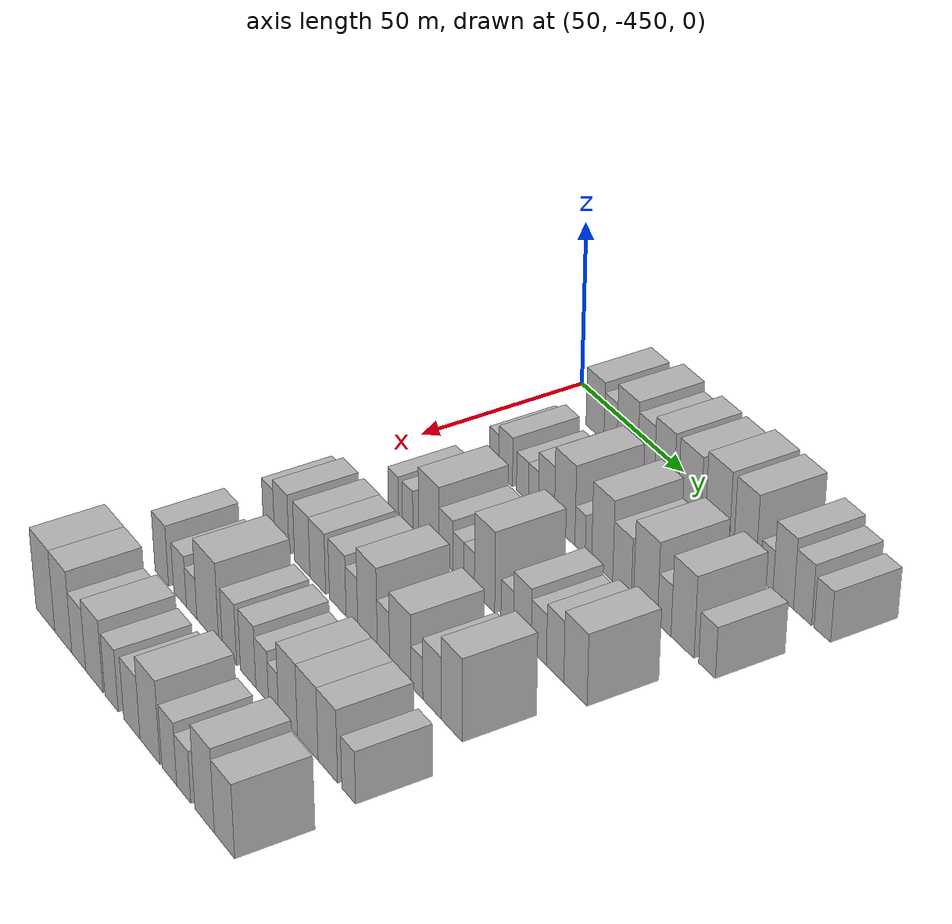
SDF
<sdf version="1.6">
 <world name="default">
  <model name="building_12">
   <static>1</static>
   <pose>50.0000 -427.6736 0 0.000000 0.000000 0.000000</pose>
   <link name="link">
    <pose>0 0 9.00 0 0 0</pose>
    <collision name="collision"><geometry><box><size>20.0000 8.9365 18.0000</size></box></geometry></collision>
    <visual name="visual">
     <cast_shadows>0</cast_shadows>
     <geometry><box><size>20.0000 8.9365 18.0000</size></box></geometry>
     <material>
      <script>
       <uri>model://HANNAS_wall/materials/scripts</uri>
       <uri>model://HANNAS_wall/materials/textures</uri>
       <name>vrc/HANNAS_wall</name>
      </script>
     </material>
    </visual>
   </link>
  </model>
  <model name="building_13">
   <static>1</static>
   <pose>50.0000 -420.0522 0 0.000000 0.000000 0.000000</pose>
   <link name="link">
    <pose>0 0 7.50 0 0 0</pose>
    <collision name="collision"><geometry><box><size>20.0000 6.3062 15.0000</size></box></geometry></collision>
    <visual name="visual">
     <cast_shadows>0</cast_shadows>
     <geometry><box><size>20.0000 6.3062 15.0000</size></box></geometry>
     <material>
      <script>
       <uri>model://HANNAS_wall/materials/scripts</uri>
       <uri>model://HANNAS_wall/materials/textures</uri>
       <name>vrc/HANNAS_wall</name>
      </script>
     </material>
    </visual>
   </link>
  </model>
  <model name="building_14">
   <static>1</static>
   <pose>50.0000 -411.8444 0 0.000000 0.000000 0.000000</pose>
   <link name="link">
    <pose>0 0 10.50 0 0 0</pose>
    <collision name="collision"><geometry><box><size>20.0000 10.1093 21.0000</size></box></geometry></collision>
    <visual name="visual">
     <cast_shadows>0</cast_shadows>
     <geometry><box><size>20.0000 10.1093 21.0000</size></box></geometry>
     <material>
      <script>
       <uri>model://HANNAS_wall/materials/scripts</uri>
       <uri>model://HANNAS_wall/materials/textures</uri>
       <name>vrc/HANNAS_wall</name>
      </script>
     </material>
    </visual>
   </link>
  </model>
  <model name="building_15">
   <static>1</static>
   <pose>50.0000 -402.8027 0 0.000000 0.000000 0.000000</pose>
   <link name="link">
    <pose>0 0 9.00 0 0 0</pose>
    <collision name="collision"><geometry><box><size>20.0000 7.9742 18.0000</size></box></geometry></collision>
    <visual name="visual">
     <cast_shadows>0</cast_shadows>
     <geometry><box><size>20.0000 7.9742 18.0000</size></box></geometry>
     <material>
      <script>
       <uri>model://HANNAS_wall/materials/scripts</uri>
       <uri>model://HANNAS_wall/materials/textures</uri>
       <name>vrc/HANNAS_wall</name>
      </script>
     </material>
    </visual>
   </link>
  </model>
  <model name="building_16">
   <static>1</static>
   <pose>50.0000 -394.1698 0 0.000000 0.000000 0.000000</pose>
   <link name="link">
    <pose>0 0 10.50 0 0 0</pose>
    <collision name="collision"><geometry><box><size>20.0000 9.2916 21.0000</size></box></geometry></collision>
    <visual name="visual">
     <cast_shadows>0</cast_shadows>
     <geometry><box><size>20.0000 9.2916 21.0000</size></box></geometry>
     <material>
      <script>
       <uri>model://HANNAS_wall/materials/scripts</uri>
       <uri>model://HANNAS_wall/materials/textures</uri>
       <name>vrc/HANNAS_wall</name>
      </script>
     </material>
    </visual>
   </link>
  </model>
  <model name="building_17">
   <static>1</static>
   <pose>50.0000 -382.2855 0 0.000000 0.000000 0.000000</pose>
   <link name="link">
    <pose>0 0 10.50 0 0 0</pose>
    <collision name="collision"><geometry><box><size>20.0000 10.4769 21.0000</size></box></geometry></collision>
    <visual name="visual">
     <cast_shadows>0</cast_shadows>
     <geometry><box><size>20.0000 10.4769 21.0000</size></box></geometry>
     <material>
      <script>
       <uri>model://HANNAS_wall/materials/scripts</uri>
       <uri>model://HANNAS_wall/materials/textures</uri>
       <name>vrc/HANNAS_wall</name>
      </script>
     </material>
    </visual>
   </link>
  </model>
  <model name="building_18">
   <static>1</static>
   <pose>50.0000 -369.6378 0 0.000000 0.000000 0.000000</pose>
   <link name="link">
    <pose>0 0 12.00 0 0 0</pose>
    <collision name="collision"><geometry><box><size>20.0000 10.8184 24.0000</size></box></geometry></collision>
    <visual name="visual">
     <cast_shadows>0</cast_shadows>
     <geometry><box><size>20.0000 10.8184 24.0000</size></box></geometry>
     <material>
      <script>
       <uri>model://HANNAS_wall/materials/scripts</uri>
       <uri>model://HANNAS_wall/materials/textures</uri>
       <name>vrc/HANNAS_wall</name>
      </script>
     </material>
    </visual>
   </link>
  </model>
  <model name="building_19">
   <static>1</static>
   <pose>50.0000 -357.3450 0 0.000000 0.000000 0.000000</pose>
   <link name="link">
    <pose>0 0 12.00 0 0 0</pose>
    <collision name="collision"><geometry><box><size>20.0000 9.7672 24.0000</size></box></geometry></collision>
    <visual name="visual">
     <cast_shadows>0</cast_shadows>
     <geometry><box><size>20.0000 9.7672 24.0000</size></box></geometry>
     <material>
      <script>
       <uri>model://HANNAS_wall/materials/scripts</uri>
       <uri>model://HANNAS_wall/materials/textures</uri>
       <name>vrc/HANNAS_wall</name>
      </script>
     </material>
    </visual>
   </link>
  </model>
  <model name="building_20">
   <static>1</static>
   <pose>50.0000 -347.6540 0 0.000000 0.000000 0.000000</pose>
   <link name="link">
    <pose>0 0 6.00 0 0 0</pose>
    <collision name="collision"><geometry><box><size>20.0000 5.6147 12.0000</size></box></geometry></collision>
    <visual name="visual">
     <cast_shadows>0</cast_shadows>
     <geometry><box><size>20.0000 5.6147 12.0000</size></box></geometry>
     <material>
      <script>
       <uri>model://HANNAS_wall/materials/scripts</uri>
       <uri>model://HANNAS_wall/materials/textures</uri>
       <name>vrc/HANNAS_wall</name>
      </script>
     </material>
    </visual>
   </link>
  </model>
  <model name="building_21">
   <static>1</static>
   <pose>50.0000 -340.4509 0 0.000000 0.000000 0.000000</pose>
   <link name="link">
    <pose>0 0 10.50 0 0 0</pose>
    <collision name="collision"><geometry><box><size>20.0000 8.7916 21.0000</size></box></geometry></collision>
    <visual name="visual">
     <cast_shadows>0</cast_shadows>
     <geometry><box><size>20.0000 8.7916 21.0000</size></box></geometry>
     <material>
      <script>
       <uri>model://HANNAS_wall/materials/scripts</uri>
       <uri>model://HANNAS_wall/materials/textures</uri>
       <name>vrc/HANNAS_wall</name>
      </script>
     </material>
    </visual>
   </link>
  </model>
  <model name="building_22">
   <static>1</static>
   <pose>50.0000 -332.2096 0 0.000000 0.000000 0.000000</pose>
   <link name="link">
    <pose>0 0 9.00 0 0 0</pose>
    <collision name="collision"><geometry><box><size>20.0000 7.6908 18.0000</size></box></geometry></collision>
    <visual name="visual">
     <cast_shadows>0</cast_shadows>
     <geometry><box><size>20.0000 7.6908 18.0000</size></box></geometry>
     <material>
      <script>
       <uri>model://HANNAS_wall/materials/scripts</uri>
       <uri>model://HANNAS_wall/materials/textures</uri>
       <name>vrc/HANNAS_wall</name>
      </script>
     </material>
    </visual>
   </link>
  </model>
  <model name="building_23">
   <static>1</static>
   <pose>50.0000 -323.9101 0 0.000000 0.000000 0.000000</pose>
   <link name="link">
    <pose>0 0 7.50 0 0 0</pose>
    <collision name="collision"><geometry><box><size>20.0000 6.9083 15.0000</size></box></geometry></collision>
    <visual name="visual">
     <cast_shadows>0</cast_shadows>
     <geometry><box><size>20.0000 6.9083 15.0000</size></box></geometry>
     <material>
      <script>
       <uri>model://HANNAS_wall/materials/scripts</uri>
       <uri>model://HANNAS_wall/materials/textures</uri>
       <name>vrc/HANNAS_wall</name>
      </script>
     </material>
    </visual>
   </link>
  </model>
  <model name="building_130">
   <static>1</static>
   <pose>82.0000 -425.8612 0 0.000000 0.000000 0.000000</pose>
   <link name="link">
    <pose>0 0 6.00 0 0 0</pose>
    <collision name="collision"><geometry><box><size>20.0000 4.9716 12.0000</size></box></geometry></collision>
    <visual name="visual">
     <cast_shadows>0</cast_shadows>
     <geometry><box><size>20.0000 4.9716 12.0000</size></box></geometry>
     <material>
      <script>
       <uri>model://HANNAS_wall/materials/scripts</uri>
       <uri>model://HANNAS_wall/materials/textures</uri>
       <name>vrc/HANNAS_wall</name>
      </script>
     </material>
    </visual>
   </link>
  </model>
  <model name="building_131">
   <static>1</static>
   <pose>82.0000 -419.9630 0 0.000000 0.000000 0.000000</pose>
   <link name="link">
    <pose>0 0 7.50 0 0 0</pose>
    <collision name="collision"><geometry><box><size>20.0000 6.8249 15.0000</size></box></geometry></collision>
    <visual name="visual">
     <cast_shadows>0</cast_shadows>
     <geometry><box><size>20.0000 6.8249 15.0000</size></box></geometry>
     <material>
      <script>
       <uri>model://HANNAS_wall/materials/scripts</uri>
       <uri>model://HANNAS_wall/materials/textures</uri>
       <name>vrc/HANNAS_wall</name>
      </script>
     </material>
    </visual>
   </link>
  </model>
  <model name="building_132">
   <static>1</static>
   <pose>82.0000 -411.5693 0 0.000000 0.000000 0.000000</pose>
   <link name="link">
    <pose>0 0 6.00 0 0 0</pose>
    <collision name="collision"><geometry><box><size>20.0000 5.9625 12.0000</size></box></geometry></collision>
    <visual name="visual">
     <cast_shadows>0</cast_shadows>
     <geometry><box><size>20.0000 5.9625 12.0000</size></box></geometry>
     <material>
      <script>
       <uri>model://HANNAS_wall/materials/scripts</uri>
       <uri>model://HANNAS_wall/materials/textures</uri>
       <name>vrc/HANNAS_wall</name>
      </script>
     </material>
    </visual>
   </link>
  </model>
  <model name="building_133">
   <static>1</static>
   <pose>82.0000 -406.1135 0 0.000000 0.000000 0.000000</pose>
   <link name="link">
    <pose>0 0 6.00 0 0 0</pose>
    <collision name="collision"><geometry><box><size>20.0000 4.9490 12.0000</size></box></geometry></collision>
    <visual name="visual">
     <cast_shadows>0</cast_shadows>
     <geometry><box><size>20.0000 4.9490 12.0000</size></box></geometry>
     <material>
      <script>
       <uri>model://HANNAS_wall/materials/scripts</uri>
       <uri>model://HANNAS_wall/materials/textures</uri>
       <name>vrc/HANNAS_wall</name>
      </script>
     </material>
    </visual>
   </link>
  </model>
  <model name="building_134">
   <static>1</static>
   <pose>82.0000 -399.7277 0 0.000000 0.000000 0.000000</pose>
   <link name="link">
    <pose>0 0 9.00 0 0 0</pose>
    <collision name="collision"><geometry><box><size>20.0000 7.8226 18.0000</size></box></geometry></collision>
    <visual name="visual">
     <cast_shadows>0</cast_shadows>
     <geometry><box><size>20.0000 7.8226 18.0000</size></box></geometry>
     <material>
      <script>
       <uri>model://HANNAS_wall/materials/scripts</uri>
       <uri>model://HANNAS_wall/materials/textures</uri>
       <name>vrc/HANNAS_wall</name>
      </script>
     </material>
    </visual>
   </link>
  </model>
  <model name="building_135">
   <static>1</static>
   <pose>82.0000 -390.8663 0 0.000000 0.000000 0.000000</pose>
   <link name="link">
    <pose>0 0 12.00 0 0 0</pose>
    <collision name="collision"><geometry><box><size>20.0000 9.9002 24.0000</size></box></geometry></collision>
    <visual name="visual">
     <cast_shadows>0</cast_shadows>
     <geometry><box><size>20.0000 9.9002 24.0000</size></box></geometry>
     <material>
      <script>
       <uri>model://HANNAS_wall/materials/scripts</uri>
       <uri>model://HANNAS_wall/materials/textures</uri>
       <name>vrc/HANNAS_wall</name>
      </script>
     </material>
    </visual>
   </link>
  </model>
  <model name="building_136">
   <static>1</static>
   <pose>82.0000 -383.4453 0 0.000000 0.000000 0.000000</pose>
   <link name="link">
    <pose>0 0 6.00 0 0 0</pose>
    <collision name="collision"><geometry><box><size>20.0000 4.9418 12.0000</size></box></geometry></collision>
    <visual name="visual">
     <cast_shadows>0</cast_shadows>
     <geometry><box><size>20.0000 4.9418 12.0000</size></box></geometry>
     <material>
      <script>
       <uri>model://HANNAS_wall/materials/scripts</uri>
       <uri>model://HANNAS_wall/materials/textures</uri>
       <name>vrc/HANNAS_wall</name>
      </script>
     </material>
    </visual>
   </link>
  </model>
  <model name="building_137">
   <static>1</static>
   <pose>82.0000 -373.0420 0 0.000000 0.000000 0.000000</pose>
   <link name="link">
    <pose>0 0 12.00 0 0 0</pose>
    <collision name="collision"><geometry><box><size>20.0000 9.8647 24.0000</size></box></geometry></collision>
    <visual name="visual">
     <cast_shadows>0</cast_shadows>
     <geometry><box><size>20.0000 9.8647 24.0000</size></box></geometry>
     <material>
      <script>
       <uri>model://HANNAS_wall/materials/scripts</uri>
       <uri>model://HANNAS_wall/materials/textures</uri>
       <name>vrc/HANNAS_wall</name>
      </script>
     </material>
    </visual>
   </link>
  </model>
  <model name="building_138">
   <static>1</static>
   <pose>82.0000 -363.8244 0 0.000000 0.000000 0.000000</pose>
   <link name="link">
    <pose>0 0 9.00 0 0 0</pose>
    <collision name="collision"><geometry><box><size>20.0000 8.5706 18.0000</size></box></geometry></collision>
    <visual name="visual">
     <cast_shadows>0</cast_shadows>
     <geometry><box><size>20.0000 8.5706 18.0000</size></box></geometry>
     <material>
      <script>
       <uri>model://HANNAS_wall/materials/scripts</uri>
       <uri>model://HANNAS_wall/materials/textures</uri>
       <name>vrc/HANNAS_wall</name>
      </script>
     </material>
    </visual>
   </link>
  </model>
  <model name="building_139">
   <static>1</static>
   <pose>82.0000 -353.1329 0 0.000000 0.000000 0.000000</pose>
   <link name="link">
    <pose>0 0 12.00 0 0 0</pose>
    <collision name="collision"><geometry><box><size>20.0000 10.8123 24.0000</size></box></geometry></collision>
    <visual name="visual">
     <cast_shadows>0</cast_shadows>
     <geometry><box><size>20.0000 10.8123 24.0000</size></box></geometry>
     <material>
      <script>
       <uri>model://HANNAS_wall/materials/scripts</uri>
       <uri>model://HANNAS_wall/materials/textures</uri>
       <name>vrc/HANNAS_wall</name>
      </script>
     </material>
    </visual>
   </link>
  </model>
  <model name="building_140">
   <static>1</static>
   <pose>82.0000 -344.7170 0 0.000000 0.000000 0.000000</pose>
   <link name="link">
    <pose>0 0 7.50 0 0 0</pose>
    <collision name="collision"><geometry><box><size>20.0000 6.0196 15.0000</size></box></geometry></collision>
    <visual name="visual">
     <cast_shadows>0</cast_shadows>
     <geometry><box><size>20.0000 6.0196 15.0000</size></box></geometry>
     <material>
      <script>
       <uri>model://HANNAS_wall/materials/scripts</uri>
       <uri>model://HANNAS_wall/materials/textures</uri>
       <name>vrc/HANNAS_wall</name>
      </script>
     </material>
    </visual>
   </link>
  </model>
  <model name="building_141">
   <static>1</static>
   <pose>82.0000 -336.6566 0 0.000000 0.000000 0.000000</pose>
   <link name="link">
    <pose>0 0 12.00 0 0 0</pose>
    <collision name="collision"><geometry><box><size>20.0000 10.1012 24.0000</size></box></geometry></collision>
    <visual name="visual">
     <cast_shadows>0</cast_shadows>
     <geometry><box><size>20.0000 10.1012 24.0000</size></box></geometry>
     <material>
      <script>
       <uri>model://HANNAS_wall/materials/scripts</uri>
       <uri>model://HANNAS_wall/materials/textures</uri>
       <name>vrc/HANNAS_wall</name>
      </script>
     </material>
    </visual>
   </link>
  </model>
  <model name="building_142">
   <static>1</static>
   <pose>82.0000 -326.0130 0 0.000000 0.000000 0.000000</pose>
   <link name="link">
    <pose>0 0 7.50 0 0 0</pose>
    <collision name="collision"><geometry><box><size>20.0000 7.1860 15.0000</size></box></geometry></collision>
    <visual name="visual">
     <cast_shadows>0</cast_shadows>
     <geometry><box><size>20.0000 7.1860 15.0000</size></box></geometry>
     <material>
      <script>
       <uri>model://HANNAS_wall/materials/scripts</uri>
       <uri>model://HANNAS_wall/materials/textures</uri>
       <name>vrc/HANNAS_wall</name>
      </script>
     </material>
    </visual>
   </link>
  </model>
  <model name="building_253">
   <static>1</static>
   <pose>114.0000 -422.2380 0 0.000000 0.000000 0.000000</pose>
   <link name="link">
    <pose>0 0 6.00 0 0 0</pose>
    <collision name="collision"><geometry><box><size>20.0000 5.4685 12.0000</size></box></geometry></collision>
    <visual name="visual">
     <cast_shadows>0</cast_shadows>
     <geometry><box><size>20.0000 5.4685 12.0000</size></box></geometry>
     <material>
      <script>
       <uri>model://HANNAS_wall/materials/scripts</uri>
       <uri>model://HANNAS_wall/materials/textures</uri>
       <name>vrc/HANNAS_wall</name>
      </script>
     </material>
    </visual>
   </link>
  </model>
  <model name="building_254">
   <static>1</static>
   <pose>114.0000 -414.7691 0 0.000000 0.000000 0.000000</pose>
   <link name="link">
    <pose>0 0 6.00 0 0 0</pose>
    <collision name="collision"><geometry><box><size>20.0000 5.4694 12.0000</size></box></geometry></collision>
    <visual name="visual">
     <cast_shadows>0</cast_shadows>
     <geometry><box><size>20.0000 5.4694 12.0000</size></box></geometry>
     <material>
      <script>
       <uri>model://HANNAS_wall/materials/scripts</uri>
       <uri>model://HANNAS_wall/materials/textures</uri>
       <name>vrc/HANNAS_wall</name>
      </script>
     </material>
    </visual>
   </link>
  </model>
  <model name="building_255">
   <static>1</static>
   <pose>114.0000 -403.7948 0 0.000000 0.000000 0.000000</pose>
   <link name="link">
    <pose>0 0 10.50 0 0 0</pose>
    <collision name="collision"><geometry><box><size>20.0000 10.4792 21.0000</size></box></geometry></collision>
    <visual name="visual">
     <cast_shadows>0</cast_shadows>
     <geometry><box><size>20.0000 10.4792 21.0000</size></box></geometry>
     <material>
      <script>
       <uri>model://HANNAS_wall/materials/scripts</uri>
       <uri>model://HANNAS_wall/materials/textures</uri>
       <name>vrc/HANNAS_wall</name>
      </script>
     </material>
    </visual>
   </link>
  </model>
  <model name="building_256">
   <static>1</static>
   <pose>114.0000 -395.1674 0 0.000000 0.000000 0.000000</pose>
   <link name="link">
    <pose>0 0 7.50 0 0 0</pose>
    <collision name="collision"><geometry><box><size>20.0000 6.7755 15.0000</size></box></geometry></collision>
    <visual name="visual">
     <cast_shadows>0</cast_shadows>
     <geometry><box><size>20.0000 6.7755 15.0000</size></box></geometry>
     <material>
      <script>
       <uri>model://HANNAS_wall/materials/scripts</uri>
       <uri>model://HANNAS_wall/materials/textures</uri>
       <name>vrc/HANNAS_wall</name>
      </script>
     </material>
    </visual>
   </link>
  </model>
  <model name="building_257">
   <static>1</static>
   <pose>114.0000 -388.9438 0 0.000000 0.000000 0.000000</pose>
   <link name="link">
    <pose>0 0 6.00 0 0 0</pose>
    <collision name="collision"><geometry><box><size>20.0000 5.6717 12.0000</size></box></geometry></collision>
    <visual name="visual">
     <cast_shadows>0</cast_shadows>
     <geometry><box><size>20.0000 5.6717 12.0000</size></box></geometry>
     <material>
      <script>
       <uri>model://HANNAS_wall/materials/scripts</uri>
       <uri>model://HANNAS_wall/materials/textures</uri>
       <name>vrc/HANNAS_wall</name>
      </script>
     </material>
    </visual>
   </link>
  </model>
  <model name="building_258">
   <static>1</static>
   <pose>114.0000 -383.6056 0 0.000000 0.000000 0.000000</pose>
   <link name="link">
    <pose>0 0 6.00 0 0 0</pose>
    <collision name="collision"><geometry><box><size>20.0000 5.0047 12.0000</size></box></geometry></collision>
    <visual name="visual">
     <cast_shadows>0</cast_shadows>
     <geometry><box><size>20.0000 5.0047 12.0000</size></box></geometry>
     <material>
      <script>
       <uri>model://HANNAS_wall/materials/scripts</uri>
       <uri>model://HANNAS_wall/materials/textures</uri>
       <name>vrc/HANNAS_wall</name>
      </script>
     </material>
    </visual>
   </link>
  </model>
  <model name="building_259">
   <static>1</static>
   <pose>114.0000 -376.1774 0 0.000000 0.000000 0.000000</pose>
   <link name="link">
    <pose>0 0 12.00 0 0 0</pose>
    <collision name="collision"><geometry><box><size>20.0000 9.8517 24.0000</size></box></geometry></collision>
    <visual name="visual">
     <cast_shadows>0</cast_shadows>
     <geometry><box><size>20.0000 9.8517 24.0000</size></box></geometry>
     <material>
      <script>
       <uri>model://HANNAS_wall/materials/scripts</uri>
       <uri>model://HANNAS_wall/materials/textures</uri>
       <name>vrc/HANNAS_wall</name>
      </script>
     </material>
    </visual>
   </link>
  </model>
  <model name="building_260">
   <static>1</static>
   <pose>114.0000 -365.2894 0 0.000000 0.000000 0.000000</pose>
   <link name="link">
    <pose>0 0 6.00 0 0 0</pose>
    <collision name="collision"><geometry><box><size>20.0000 5.9241 12.0000</size></box></geometry></collision>
    <visual name="visual">
     <cast_shadows>0</cast_shadows>
     <geometry><box><size>20.0000 5.9241 12.0000</size></box></geometry>
     <material>
      <script>
       <uri>model://HANNAS_wall/materials/scripts</uri>
       <uri>model://HANNAS_wall/materials/textures</uri>
       <name>vrc/HANNAS_wall</name>
      </script>
     </material>
    </visual>
   </link>
  </model>
  <model name="building_261">
   <static>1</static>
   <pose>114.0000 -358.1613 0 0.000000 0.000000 0.000000</pose>
   <link name="link">
    <pose>0 0 9.00 0 0 0</pose>
    <collision name="collision"><geometry><box><size>20.0000 8.3322 18.0000</size></box></geometry></collision>
    <visual name="visual">
     <cast_shadows>0</cast_shadows>
     <geometry><box><size>20.0000 8.3322 18.0000</size></box></geometry>
     <material>
      <script>
       <uri>model://HANNAS_wall/materials/scripts</uri>
       <uri>model://HANNAS_wall/materials/textures</uri>
       <name>vrc/HANNAS_wall</name>
      </script>
     </material>
    </visual>
   </link>
  </model>
  <model name="building_262">
   <static>1</static>
   <pose>114.0000 -350.4520 0 0.000000 0.000000 0.000000</pose>
   <link name="link">
    <pose>0 0 7.50 0 0 0</pose>
    <collision name="collision"><geometry><box><size>20.0000 7.0865 15.0000</size></box></geometry></collision>
    <visual name="visual">
     <cast_shadows>0</cast_shadows>
     <geometry><box><size>20.0000 7.0865 15.0000</size></box></geometry>
     <material>
      <script>
       <uri>model://HANNAS_wall/materials/scripts</uri>
       <uri>model://HANNAS_wall/materials/textures</uri>
       <name>vrc/HANNAS_wall</name>
      </script>
     </material>
    </visual>
   </link>
  </model>
  <model name="building_263">
   <static>1</static>
   <pose>114.0000 -342.9516 0 0.000000 0.000000 0.000000</pose>
   <link name="link">
    <pose>0 0 9.00 0 0 0</pose>
    <collision name="collision"><geometry><box><size>20.0000 7.9142 18.0000</size></box></geometry></collision>
    <visual name="visual">
     <cast_shadows>0</cast_shadows>
     <geometry><box><size>20.0000 7.9142 18.0000</size></box></geometry>
     <material>
      <script>
       <uri>model://HANNAS_wall/materials/scripts</uri>
       <uri>model://HANNAS_wall/materials/textures</uri>
       <name>vrc/HANNAS_wall</name>
      </script>
     </material>
    </visual>
   </link>
  </model>
  <model name="building_264">
   <static>1</static>
   <pose>114.0000 -333.7880 0 0.000000 0.000000 0.000000</pose>
   <link name="link">
    <pose>0 0 10.50 0 0 0</pose>
    <collision name="collision"><geometry><box><size>20.0000 10.4131 21.0000</size></box></geometry></collision>
    <visual name="visual">
     <cast_shadows>0</cast_shadows>
     <geometry><box><size>20.0000 10.4131 21.0000</size></box></geometry>
     <material>
      <script>
       <uri>model://HANNAS_wall/materials/scripts</uri>
       <uri>model://HANNAS_wall/materials/textures</uri>
       <name>vrc/HANNAS_wall</name>
      </script>
     </material>
    </visual>
   </link>
  </model>
  <model name="building_378">
   <static>1</static>
   <pose>146.0000 -429.3602 0 0.000000 0.000000 0.000000</pose>
   <link name="link">
    <pose>0 0 7.50 0 0 0</pose>
    <collision name="collision"><geometry><box><size>20.0000 6.1961 15.0000</size></box></geometry></collision>
    <visual name="visual">
     <cast_shadows>0</cast_shadows>
     <geometry><box><size>20.0000 6.1961 15.0000</size></box></geometry>
     <material>
      <script>
       <uri>model://HANNAS_wall/materials/scripts</uri>
       <uri>model://HANNAS_wall/materials/textures</uri>
       <name>vrc/HANNAS_wall</name>
      </script>
     </material>
    </visual>
   </link>
  </model>
  <model name="building_379">
   <static>1</static>
   <pose>146.0000 -422.3146 0 0.000000 0.000000 0.000000</pose>
   <link name="link">
    <pose>0 0 9.00 0 0 0</pose>
    <collision name="collision"><geometry><box><size>20.0000 7.8951 18.0000</size></box></geometry></collision>
    <visual name="visual">
     <cast_shadows>0</cast_shadows>
     <geometry><box><size>20.0000 7.8951 18.0000</size></box></geometry>
     <material>
      <script>
       <uri>model://HANNAS_wall/materials/scripts</uri>
       <uri>model://HANNAS_wall/materials/textures</uri>
       <name>vrc/HANNAS_wall</name>
      </script>
     </material>
    </visual>
   </link>
  </model>
  <model name="building_380">
   <static>1</static>
   <pose>146.0000 -411.2506 0 0.000000 0.000000 0.000000</pose>
   <link name="link">
    <pose>0 0 9.00 0 0 0</pose>
    <collision name="collision"><geometry><box><size>20.0000 8.2328 18.0000</size></box></geometry></collision>
    <visual name="visual">
     <cast_shadows>0</cast_shadows>
     <geometry><box><size>20.0000 8.2328 18.0000</size></box></geometry>
     <material>
      <script>
       <uri>model://HANNAS_wall/materials/scripts</uri>
       <uri>model://HANNAS_wall/materials/textures</uri>
       <name>vrc/HANNAS_wall</name>
      </script>
     </material>
    </visual>
   </link>
  </model>
  <model name="building_381">
   <static>1</static>
   <pose>146.0000 -402.9818 0 0.000000 0.000000 0.000000</pose>
   <link name="link">
    <pose>0 0 9.00 0 0 0</pose>
    <collision name="collision"><geometry><box><size>20.0000 8.3048 18.0000</size></box></geometry></collision>
    <visual name="visual">
     <cast_shadows>0</cast_shadows>
     <geometry><box><size>20.0000 8.3048 18.0000</size></box></geometry>
     <material>
      <script>
       <uri>model://HANNAS_wall/materials/scripts</uri>
       <uri>model://HANNAS_wall/materials/textures</uri>
       <name>vrc/HANNAS_wall</name>
      </script>
     </material>
    </visual>
   </link>
  </model>
  <model name="building_382">
   <static>1</static>
   <pose>146.0000 -392.5297 0 0.000000 0.000000 0.000000</pose>
   <link name="link">
    <pose>0 0 9.00 0 0 0</pose>
    <collision name="collision"><geometry><box><size>20.0000 8.5994 18.0000</size></box></geometry></collision>
    <visual name="visual">
     <cast_shadows>0</cast_shadows>
     <geometry><box><size>20.0000 8.5994 18.0000</size></box></geometry>
     <material>
      <script>
       <uri>model://HANNAS_wall/materials/scripts</uri>
       <uri>model://HANNAS_wall/materials/textures</uri>
       <name>vrc/HANNAS_wall</name>
      </script>
     </material>
    </visual>
   </link>
  </model>
  <model name="building_383">
   <static>1</static>
   <pose>146.0000 -385.2296 0 0.000000 0.000000 0.000000</pose>
   <link name="link">
    <pose>0 0 7.50 0 0 0</pose>
    <collision name="collision"><geometry><box><size>20.0000 6.0008 15.0000</size></box></geometry></collision>
    <visual name="visual">
     <cast_shadows>0</cast_shadows>
     <geometry><box><size>20.0000 6.0008 15.0000</size></box></geometry>
     <material>
      <script>
       <uri>model://HANNAS_wall/materials/scripts</uri>
       <uri>model://HANNAS_wall/materials/textures</uri>
       <name>vrc/HANNAS_wall</name>
      </script>
     </material>
    </visual>
   </link>
  </model>
  <model name="building_384">
   <static>1</static>
   <pose>146.0000 -377.3053 0 0.000000 0.000000 0.000000</pose>
   <link name="link">
    <pose>0 0 12.00 0 0 0</pose>
    <collision name="collision"><geometry><box><size>20.0000 9.8477 24.0000</size></box></geometry></collision>
    <visual name="visual">
     <cast_shadows>0</cast_shadows>
     <geometry><box><size>20.0000 9.8477 24.0000</size></box></geometry>
     <material>
      <script>
       <uri>model://HANNAS_wall/materials/scripts</uri>
       <uri>model://HANNAS_wall/materials/textures</uri>
       <name>vrc/HANNAS_wall</name>
      </script>
     </material>
    </visual>
   </link>
  </model>
  <model name="building_385">
   <static>1</static>
   <pose>146.0000 -369.3128 0 0.000000 0.000000 0.000000</pose>
   <link name="link">
    <pose>0 0 7.50 0 0 0</pose>
    <collision name="collision"><geometry><box><size>20.0000 6.1375 15.0000</size></box></geometry></collision>
    <visual name="visual">
     <cast_shadows>0</cast_shadows>
     <geometry><box><size>20.0000 6.1375 15.0000</size></box></geometry>
     <material>
      <script>
       <uri>model://HANNAS_wall/materials/scripts</uri>
       <uri>model://HANNAS_wall/materials/textures</uri>
       <name>vrc/HANNAS_wall</name>
      </script>
     </material>
    </visual>
   </link>
  </model>
  <model name="building_386">
   <static>1</static>
   <pose>146.0000 -361.0098 0 0.000000 0.000000 0.000000</pose>
   <link name="link">
    <pose>0 0 10.50 0 0 0</pose>
    <collision name="collision"><geometry><box><size>20.0000 10.4684 21.0000</size></box></geometry></collision>
    <visual name="visual">
     <cast_shadows>0</cast_shadows>
     <geometry><box><size>20.0000 10.4684 21.0000</size></box></geometry>
     <material>
      <script>
       <uri>model://HANNAS_wall/materials/scripts</uri>
       <uri>model://HANNAS_wall/materials/textures</uri>
       <name>vrc/HANNAS_wall</name>
      </script>
     </material>
    </visual>
   </link>
  </model>
  <model name="building_387">
   <static>1</static>
   <pose>146.0000 -352.9588 0 0.000000 0.000000 0.000000</pose>
   <link name="link">
    <pose>0 0 6.00 0 0 0</pose>
    <collision name="collision"><geometry><box><size>20.0000 5.6337 12.0000</size></box></geometry></collision>
    <visual name="visual">
     <cast_shadows>0</cast_shadows>
     <geometry><box><size>20.0000 5.6337 12.0000</size></box></geometry>
     <material>
      <script>
       <uri>model://HANNAS_wall/materials/scripts</uri>
       <uri>model://HANNAS_wall/materials/textures</uri>
       <name>vrc/HANNAS_wall</name>
      </script>
     </material>
    </visual>
   </link>
  </model>
  <model name="building_388">
   <static>1</static>
   <pose>146.0000 -345.7537 0 0.000000 0.000000 0.000000</pose>
   <link name="link">
    <pose>0 0 9.00 0 0 0</pose>
    <collision name="collision"><geometry><box><size>20.0000 8.7763 18.0000</size></box></geometry></collision>
    <visual name="visual">
     <cast_shadows>0</cast_shadows>
     <geometry><box><size>20.0000 8.7763 18.0000</size></box></geometry>
     <material>
      <script>
       <uri>model://HANNAS_wall/materials/scripts</uri>
       <uri>model://HANNAS_wall/materials/textures</uri>
       <name>vrc/HANNAS_wall</name>
      </script>
     </material>
    </visual>
   </link>
  </model>
  <model name="building_389">
   <static>1</static>
   <pose>146.0000 -336.4719 0 0.000000 0.000000 0.000000</pose>
   <link name="link">
    <pose>0 0 12.00 0 0 0</pose>
    <collision name="collision"><geometry><box><size>20.0000 9.7873 24.0000</size></box></geometry></collision>
    <visual name="visual">
     <cast_shadows>0</cast_shadows>
     <geometry><box><size>20.0000 9.7873 24.0000</size></box></geometry>
     <material>
      <script>
       <uri>model://HANNAS_wall/materials/scripts</uri>
       <uri>model://HANNAS_wall/materials/textures</uri>
       <name>vrc/HANNAS_wall</name>
      </script>
     </material>
    </visual>
   </link>
  </model>
  <model name="building_494">
   <static>1</static>
   <pose>178.0000 -425.0923 0 0.000000 0.000000 0.000000</pose>
   <link name="link">
    <pose>0 0 9.00 0 0 0</pose>
    <collision name="collision"><geometry><box><size>20.0000 7.6923 18.0000</size></box></geometry></collision>
    <visual name="visual">
     <cast_shadows>0</cast_shadows>
     <geometry><box><size>20.0000 7.6923 18.0000</size></box></geometry>
     <material>
      <script>
       <uri>model://HANNAS_wall/materials/scripts</uri>
       <uri>model://HANNAS_wall/materials/textures</uri>
       <name>vrc/HANNAS_wall</name>
      </script>
     </material>
    </visual>
   </link>
  </model>
  <model name="building_495">
   <static>1</static>
   <pose>178.0000 -414.7209 0 0.000000 0.000000 0.000000</pose>
   <link name="link">
    <pose>0 0 7.50 0 0 0</pose>
    <collision name="collision"><geometry><box><size>20.0000 7.0506 15.0000</size></box></geometry></collision>
    <visual name="visual">
     <cast_shadows>0</cast_shadows>
     <geometry><box><size>20.0000 7.0506 15.0000</size></box></geometry>
     <material>
      <script>
       <uri>model://HANNAS_wall/materials/scripts</uri>
       <uri>model://HANNAS_wall/materials/textures</uri>
       <name>vrc/HANNAS_wall</name>
      </script>
     </material>
    </visual>
   </link>
  </model>
  <model name="building_496">
   <static>1</static>
   <pose>178.0000 -408.2402 0 0.000000 0.000000 0.000000</pose>
   <link name="link">
    <pose>0 0 6.00 0 0 0</pose>
    <collision name="collision"><geometry><box><size>20.0000 5.9109 12.0000</size></box></geometry></collision>
    <visual name="visual">
     <cast_shadows>0</cast_shadows>
     <geometry><box><size>20.0000 5.9109 12.0000</size></box></geometry>
     <material>
      <script>
       <uri>model://HANNAS_wall/materials/scripts</uri>
       <uri>model://HANNAS_wall/materials/textures</uri>
       <name>vrc/HANNAS_wall</name>
      </script>
     </material>
    </visual>
   </link>
  </model>
  <model name="building_497">
   <static>1</static>
   <pose>178.0000 -399.3079 0 0.000000 0.000000 0.000000</pose>
   <link name="link">
    <pose>0 0 12.00 0 0 0</pose>
    <collision name="collision"><geometry><box><size>20.0000 11.9537 24.0000</size></box></geometry></collision>
    <visual name="visual">
     <cast_shadows>0</cast_shadows>
     <geometry><box><size>20.0000 11.9537 24.0000</size></box></geometry>
     <material>
      <script>
       <uri>model://HANNAS_wall/materials/scripts</uri>
       <uri>model://HANNAS_wall/materials/textures</uri>
       <name>vrc/HANNAS_wall</name>
      </script>
     </material>
    </visual>
   </link>
  </model>
  <model name="building_498">
   <static>1</static>
   <pose>178.0000 -387.5492 0 0.000000 0.000000 0.000000</pose>
   <link name="link">
    <pose>0 0 9.00 0 0 0</pose>
    <collision name="collision"><geometry><box><size>20.0000 7.5636 18.0000</size></box></geometry></collision>
    <visual name="visual">
     <cast_shadows>0</cast_shadows>
     <geometry><box><size>20.0000 7.5636 18.0000</size></box></geometry>
     <material>
      <script>
       <uri>model://HANNAS_wall/materials/scripts</uri>
       <uri>model://HANNAS_wall/materials/textures</uri>
       <name>vrc/HANNAS_wall</name>
      </script>
     </material>
    </visual>
   </link>
  </model>
  <model name="building_499">
   <static>1</static>
   <pose>178.0000 -377.7332 0 0.000000 0.000000 0.000000</pose>
   <link name="link">
    <pose>0 0 9.00 0 0 0</pose>
    <collision name="collision"><geometry><box><size>20.0000 8.0683 18.0000</size></box></geometry></collision>
    <visual name="visual">
     <cast_shadows>0</cast_shadows>
     <geometry><box><size>20.0000 8.0683 18.0000</size></box></geometry>
     <material>
      <script>
       <uri>model://HANNAS_wall/materials/scripts</uri>
       <uri>model://HANNAS_wall/materials/textures</uri>
       <name>vrc/HANNAS_wall</name>
      </script>
     </material>
    </visual>
   </link>
  </model>
  <model name="building_500">
   <static>1</static>
   <pose>178.0000 -370.3982 0 0.000000 0.000000 0.000000</pose>
   <link name="link">
    <pose>0 0 7.50 0 0 0</pose>
    <collision name="collision"><geometry><box><size>20.0000 6.6017 15.0000</size></box></geometry></collision>
    <visual name="visual">
     <cast_shadows>0</cast_shadows>
     <geometry><box><size>20.0000 6.6017 15.0000</size></box></geometry>
     <material>
      <script>
       <uri>model://HANNAS_wall/materials/scripts</uri>
       <uri>model://HANNAS_wall/materials/textures</uri>
       <name>vrc/HANNAS_wall</name>
      </script>
     </material>
    </visual>
   </link>
  </model>
  <model name="building_501">
   <static>1</static>
   <pose>178.0000 -364.5543 0 0.000000 0.000000 0.000000</pose>
   <link name="link">
    <pose>0 0 6.00 0 0 0</pose>
    <collision name="collision"><geometry><box><size>20.0000 5.0861 12.0000</size></box></geometry></collision>
    <visual name="visual">
     <cast_shadows>0</cast_shadows>
     <geometry><box><size>20.0000 5.0861 12.0000</size></box></geometry>
     <material>
      <script>
       <uri>model://HANNAS_wall/materials/scripts</uri>
       <uri>model://HANNAS_wall/materials/textures</uri>
       <name>vrc/HANNAS_wall</name>
      </script>
     </material>
    </visual>
   </link>
  </model>
  <model name="building_502">
   <static>1</static>
   <pose>178.0000 -357.2171 0 0.000000 0.000000 0.000000</pose>
   <link name="link">
    <pose>0 0 10.50 0 0 0</pose>
    <collision name="collision"><geometry><box><size>20.0000 9.5883 21.0000</size></box></geometry></collision>
    <visual name="visual">
     <cast_shadows>0</cast_shadows>
     <geometry><box><size>20.0000 9.5883 21.0000</size></box></geometry>
     <material>
      <script>
       <uri>model://HANNAS_wall/materials/scripts</uri>
       <uri>model://HANNAS_wall/materials/textures</uri>
       <name>vrc/HANNAS_wall</name>
      </script>
     </material>
    </visual>
   </link>
  </model>
  <model name="building_503">
   <static>1</static>
   <pose>178.0000 -347.3186 0 0.000000 0.000000 0.000000</pose>
   <link name="link">
    <pose>0 0 10.50 0 0 0</pose>
    <collision name="collision"><geometry><box><size>20.0000 10.2086 21.0000</size></box></geometry></collision>
    <visual name="visual">
     <cast_shadows>0</cast_shadows>
     <geometry><box><size>20.0000 10.2086 21.0000</size></box></geometry>
     <material>
      <script>
       <uri>model://HANNAS_wall/materials/scripts</uri>
       <uri>model://HANNAS_wall/materials/textures</uri>
       <name>vrc/HANNAS_wall</name>
      </script>
     </material>
    </visual>
   </link>
  </model>
  <model name="building_504">
   <static>1</static>
   <pose>178.0000 -337.4919 0 0.000000 0.000000 0.000000</pose>
   <link name="link">
    <pose>0 0 10.50 0 0 0</pose>
    <collision name="collision"><geometry><box><size>20.0000 9.4447 21.0000</size></box></geometry></collision>
    <visual name="visual">
     <cast_shadows>0</cast_shadows>
     <geometry><box><size>20.0000 9.4447 21.0000</size></box></geometry>
     <material>
      <script>
       <uri>model://HANNAS_wall/materials/scripts</uri>
       <uri>model://HANNAS_wall/materials/textures</uri>
       <name>vrc/HANNAS_wall</name>
      </script>
     </material>
    </visual>
   </link>
  </model>
  <model name="building_505">
   <static>1</static>
   <pose>178.0000 -327.4925 0 0.000000 0.000000 0.000000</pose>
   <link name="link">
    <pose>0 0 7.50 0 0 0</pose>
    <collision name="collision"><geometry><box><size>20.0000 6.5541 15.0000</size></box></geometry></collision>
    <visual name="visual">
     <cast_shadows>0</cast_shadows>
     <geometry><box><size>20.0000 6.5541 15.0000</size></box></geometry>
     <material>
      <script>
       <uri>model://HANNAS_wall/materials/scripts</uri>
       <uri>model://HANNAS_wall/materials/textures</uri>
       <name>vrc/HANNAS_wall</name>
      </script>
     </material>
    </visual>
   </link>
  </model>
  <model name="building_615">
   <static>1</static>
   <pose>210.0000 -423.5160 0 0.000000 0.000000 0.000000</pose>
   <link name="link">
    <pose>0 0 12.00 0 0 0</pose>
    <collision name="collision"><geometry><box><size>20.0000 11.1284 24.0000</size></box></geometry></collision>
    <visual name="visual">
     <cast_shadows>0</cast_shadows>
     <geometry><box><size>20.0000 11.1284 24.0000</size></box></geometry>
     <material>
      <script>
       <uri>model://HANNAS_wall/materials/scripts</uri>
       <uri>model://HANNAS_wall/materials/textures</uri>
       <name>vrc/HANNAS_wall</name>
      </script>
     </material>
    </visual>
   </link>
  </model>
  <model name="building_616">
   <static>1</static>
   <pose>210.0000 -412.9535 0 0.000000 0.000000 0.000000</pose>
   <link name="link">
    <pose>0 0 12.00 0 0 0</pose>
    <collision name="collision"><geometry><box><size>20.0000 9.9967 24.0000</size></box></geometry></collision>
    <visual name="visual">
     <cast_shadows>0</cast_shadows>
     <geometry><box><size>20.0000 9.9967 24.0000</size></box></geometry>
     <material>
      <script>
       <uri>model://HANNAS_wall/materials/scripts</uri>
       <uri>model://HANNAS_wall/materials/textures</uri>
       <name>vrc/HANNAS_wall</name>
      </script>
     </material>
    </visual>
   </link>
  </model>
  <model name="building_617">
   <static>1</static>
   <pose>210.0000 -403.9515 0 0.000000 0.000000 0.000000</pose>
   <link name="link">
    <pose>0 0 9.00 0 0 0</pose>
    <collision name="collision"><geometry><box><size>20.0000 8.0074 18.0000</size></box></geometry></collision>
    <visual name="visual">
     <cast_shadows>0</cast_shadows>
     <geometry><box><size>20.0000 8.0074 18.0000</size></box></geometry>
     <material>
      <script>
       <uri>model://HANNAS_wall/materials/scripts</uri>
       <uri>model://HANNAS_wall/materials/textures</uri>
       <name>vrc/HANNAS_wall</name>
      </script>
     </material>
    </visual>
   </link>
  </model>
  <model name="building_618">
   <static>1</static>
   <pose>210.0000 -395.0289 0 0.000000 0.000000 0.000000</pose>
   <link name="link">
    <pose>0 0 10.50 0 0 0</pose>
    <collision name="collision"><geometry><box><size>20.0000 9.8378 21.0000</size></box></geometry></collision>
    <visual name="visual">
     <cast_shadows>0</cast_shadows>
     <geometry><box><size>20.0000 9.8378 21.0000</size></box></geometry>
     <material>
      <script>
       <uri>model://HANNAS_wall/materials/scripts</uri>
       <uri>model://HANNAS_wall/materials/textures</uri>
       <name>vrc/HANNAS_wall</name>
      </script>
     </material>
    </visual>
   </link>
  </model>
  <model name="building_619">
   <static>1</static>
   <pose>210.0000 -385.3624 0 0.000000 0.000000 0.000000</pose>
   <link name="link">
    <pose>0 0 9.00 0 0 0</pose>
    <collision name="collision"><geometry><box><size>20.0000 7.4952 18.0000</size></box></geometry></collision>
    <visual name="visual">
     <cast_shadows>0</cast_shadows>
     <geometry><box><size>20.0000 7.4952 18.0000</size></box></geometry>
     <material>
      <script>
       <uri>model://HANNAS_wall/materials/scripts</uri>
       <uri>model://HANNAS_wall/materials/textures</uri>
       <name>vrc/HANNAS_wall</name>
      </script>
     </material>
    </visual>
   </link>
  </model>
  <model name="building_620">
   <static>1</static>
   <pose>210.0000 -374.1745 0 0.000000 0.000000 0.000000</pose>
   <link name="link">
    <pose>0 0 9.00 0 0 0</pose>
    <collision name="collision"><geometry><box><size>20.0000 8.8807 18.0000</size></box></geometry></collision>
    <visual name="visual">
     <cast_shadows>0</cast_shadows>
     <geometry><box><size>20.0000 8.8807 18.0000</size></box></geometry>
     <material>
      <script>
       <uri>model://HANNAS_wall/materials/scripts</uri>
       <uri>model://HANNAS_wall/materials/textures</uri>
       <name>vrc/HANNAS_wall</name>
      </script>
     </material>
    </visual>
   </link>
  </model>
  <model name="building_621">
   <static>1</static>
   <pose>210.0000 -364.3709 0 0.000000 0.000000 0.000000</pose>
   <link name="link">
    <pose>0 0 12.00 0 0 0</pose>
    <collision name="collision"><geometry><box><size>20.0000 10.7265 24.0000</size></box></geometry></collision>
    <visual name="visual">
     <cast_shadows>0</cast_shadows>
     <geometry><box><size>20.0000 10.7265 24.0000</size></box></geometry>
     <material>
      <script>
       <uri>model://HANNAS_wall/materials/scripts</uri>
       <uri>model://HANNAS_wall/materials/textures</uri>
       <name>vrc/HANNAS_wall</name>
      </script>
     </material>
    </visual>
   </link>
  </model>
  <model name="building_622">
   <static>1</static>
   <pose>210.0000 -354.1256 0 0.000000 0.000000 0.000000</pose>
   <link name="link">
    <pose>0 0 9.00 0 0 0</pose>
    <collision name="collision"><geometry><box><size>20.0000 7.7640 18.0000</size></box></geometry></collision>
    <visual name="visual">
     <cast_shadows>0</cast_shadows>
     <geometry><box><size>20.0000 7.7640 18.0000</size></box></geometry>
     <material>
      <script>
       <uri>model://HANNAS_wall/materials/scripts</uri>
       <uri>model://HANNAS_wall/materials/textures</uri>
       <name>vrc/HANNAS_wall</name>
      </script>
     </material>
    </visual>
   </link>
  </model>
  <model name="building_623">
   <static>1</static>
   <pose>210.0000 -346.5977 0 0.000000 0.000000 0.000000</pose>
   <link name="link">
    <pose>0 0 7.50 0 0 0</pose>
    <collision name="collision"><geometry><box><size>20.0000 7.2918 15.0000</size></box></geometry></collision>
    <visual name="visual">
     <cast_shadows>0</cast_shadows>
     <geometry><box><size>20.0000 7.2918 15.0000</size></box></geometry>
     <material>
      <script>
       <uri>model://HANNAS_wall/materials/scripts</uri>
       <uri>model://HANNAS_wall/materials/textures</uri>
       <name>vrc/HANNAS_wall</name>
      </script>
     </material>
    </visual>
   </link>
  </model>
  <model name="building_624">
   <static>1</static>
   <pose>210.0000 -335.9753 0 0.000000 0.000000 0.000000</pose>
   <link name="link">
    <pose>0 0 12.00 0 0 0</pose>
    <collision name="collision"><geometry><box><size>20.0000 9.9530 24.0000</size></box></geometry></collision>
    <visual name="visual">
     <cast_shadows>0</cast_shadows>
     <geometry><box><size>20.0000 9.9530 24.0000</size></box></geometry>
     <material>
      <script>
       <uri>model://HANNAS_wall/materials/scripts</uri>
       <uri>model://HANNAS_wall/materials/textures</uri>
       <name>vrc/HANNAS_wall</name>
      </script>
     </material>
    </visual>
   </link>
  </model>
  <model name="building_625">
   <static>1</static>
   <pose>210.0000 -326.0030 0 0.000000 0.000000 0.000000</pose>
   <link name="link">
    <pose>0 0 10.50 0 0 0</pose>
    <collision name="collision"><geometry><box><size>20.0000 9.9917 21.0000</size></box></geometry></collision>
    <visual name="visual">
     <cast_shadows>0</cast_shadows>
     <geometry><box><size>20.0000 9.9917 21.0000</size></box></geometry>
     <material>
      <script>
       <uri>model://HANNAS_wall/materials/scripts</uri>
       <uri>model://HANNAS_wall/materials/textures</uri>
       <name>vrc/HANNAS_wall</name>
      </script>
     </material>
    </visual>
   </link>
  </model>
 </world>
</sdf>
